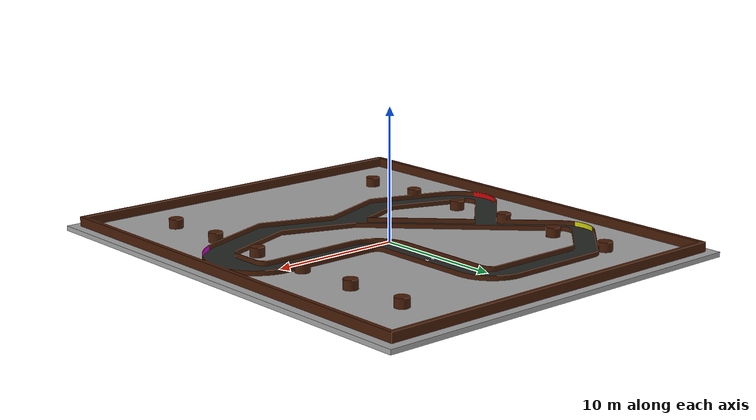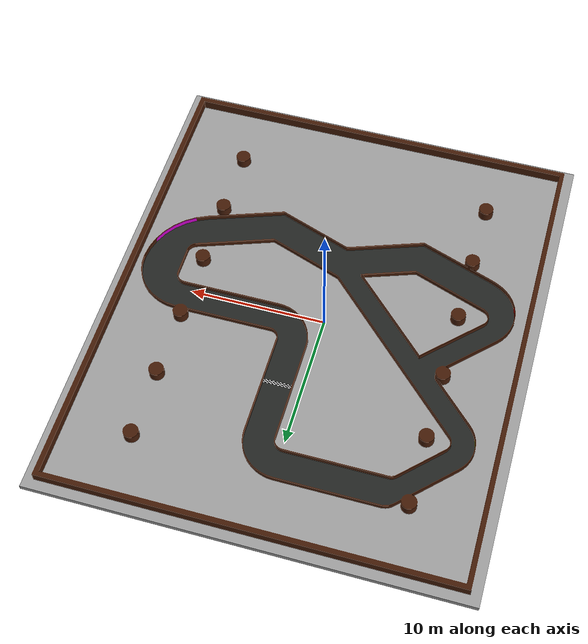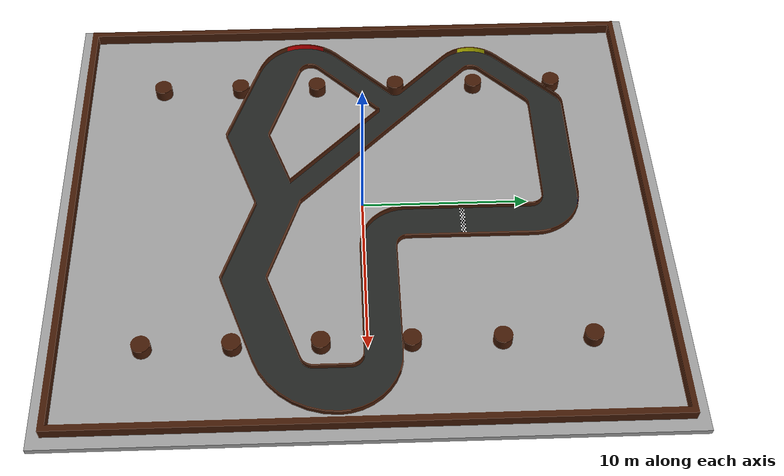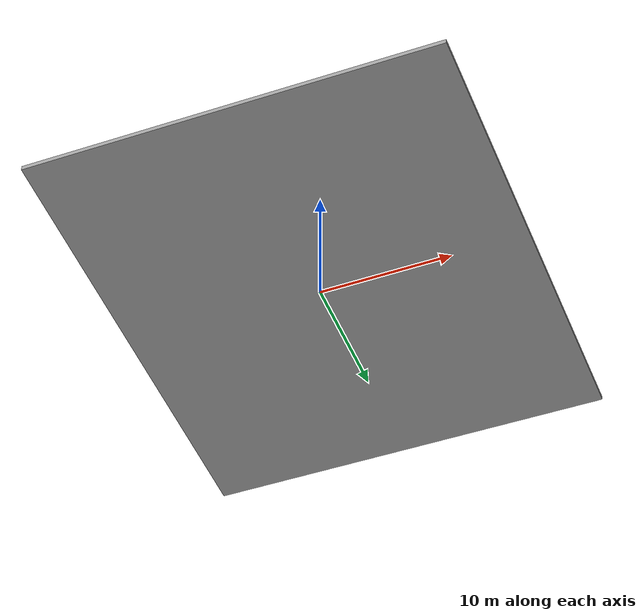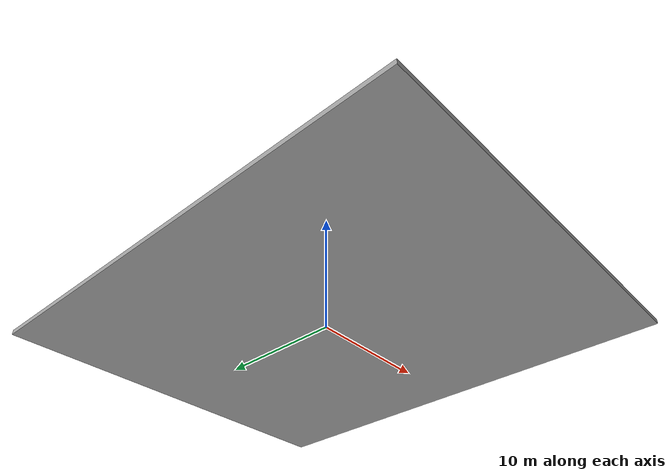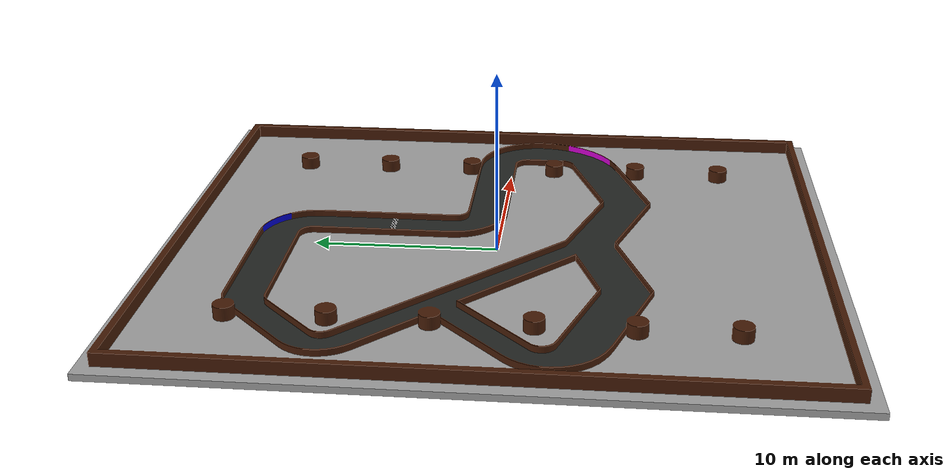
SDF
<?xml version='1.0'?>
<sdf version='1.4'>
  <model name="walker_racecourse">
    <link name="link">
      <collision name="collision">
        <geometry>
          <mesh>
            <uri>model://racecar_gazebo/meshes/walker_racecourse.dae</uri>
          </mesh>
        </geometry>
      </collision>
      <visual name="visual">
        <geometry>
          <mesh>
            <uri>model://racecar_gazebo/meshes/walker_racecourse.dae</uri>
          </mesh>
        </geometry>
      </visual>
    </link>
    <static>1</static>
  </model>
</sdf>
